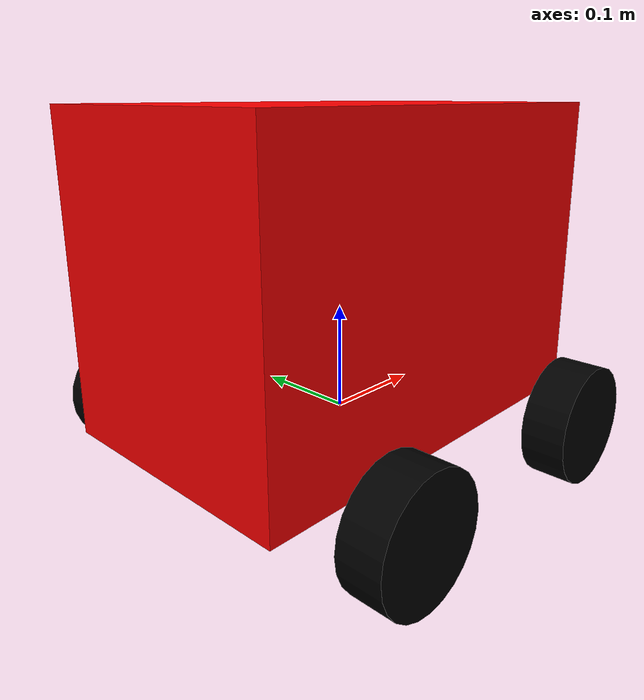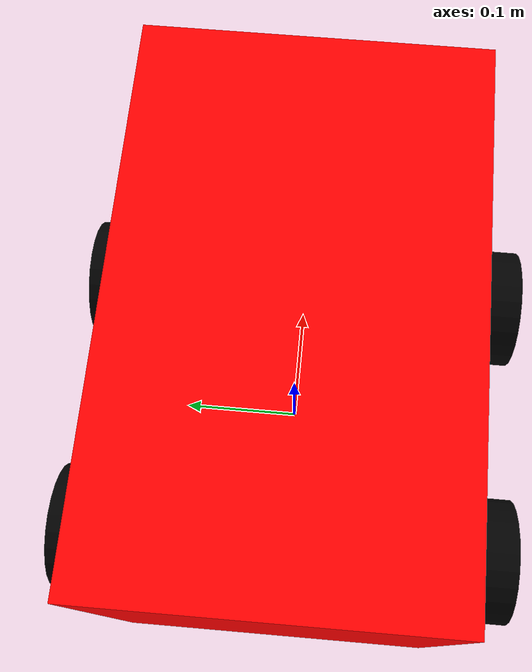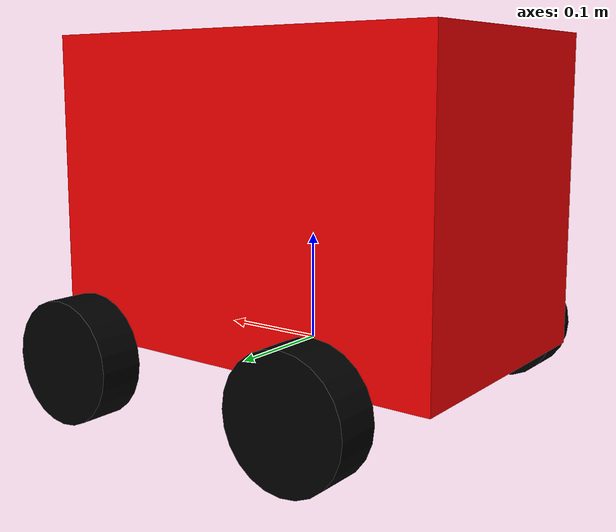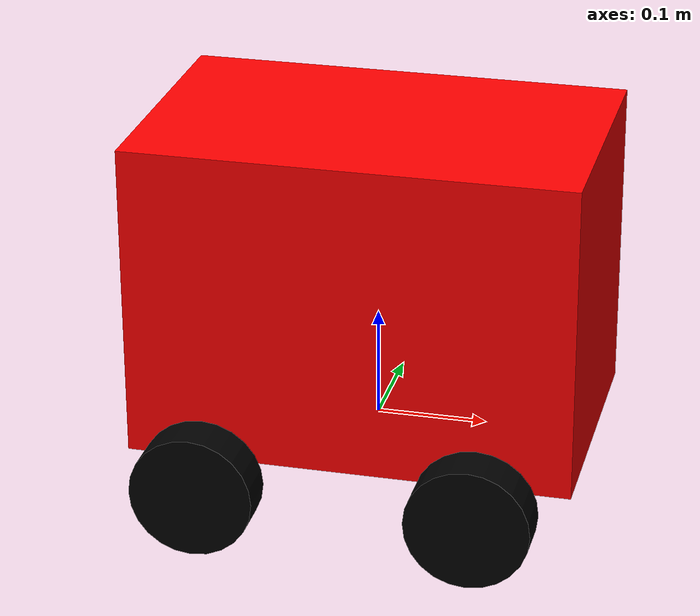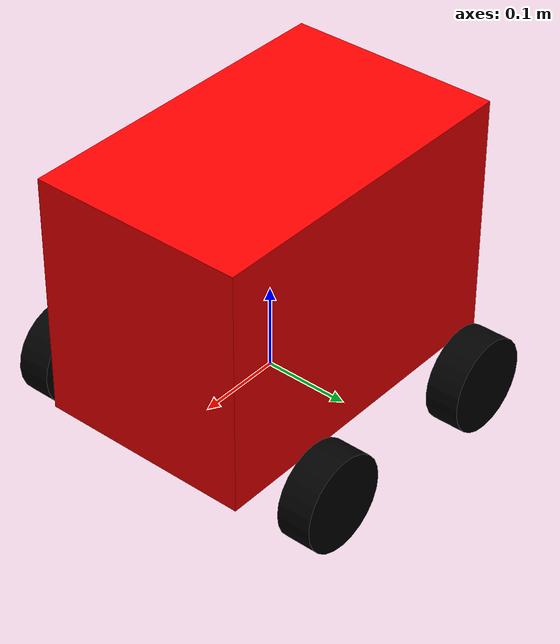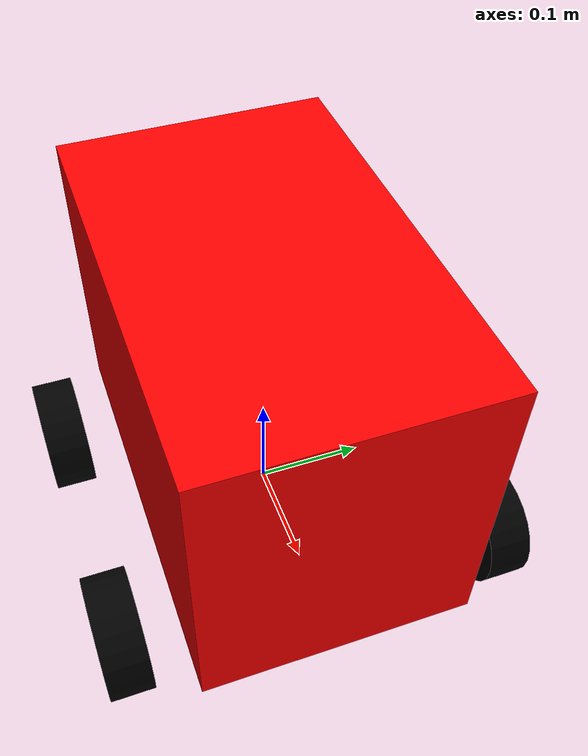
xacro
<?xml version="1.0"?>
<robot xmlns:xacro="https://www.ros.org/wiki/xacro">

    <xacro:include filename="inertial_macros.xacro"/>

    <!-- MATERIALS-->

    <material name="red">
        <color rgba="1 0.0 0.0 1.0"/>
    </material>

    <material name="black">
        <color rgba="0.0 0.0 0.0 1.0"/>
    </material>

    <material name="green">
        <color rgba="0.0 1 0.0 1.0"/>
    </material>

    <!-- LINKS-->

    <link name="base_link"></link>

    <link name="base_footprint"></link>

    <link name="chassis">
        <visual>
            <geometry>
                <box size="0.4 0.25 0.285"/>
            </geometry>
            <origin xyz="0.2 0.0 0.1425" rpy="0.0 0.0 0.0"/>
            <material name="red"/>
        </visual>
        <collision>
            <geometry>
                <box size="0.4 0.25 0.285"/>
            </geometry>
            <origin xyz="0.2 0.0 0.1425" rpy="0.0 0.0 0.0"/>
        </collision>
        <xacro:inertial_box mass="0.5" x="0.4" y="0.25" z="0.285">
            <origin xyz="0.2 0.0 0.1425" rpy="0.0 0.0 0.0"/>
        </xacro:inertial_box>
    </link>
    <gazebo reference="chassis">
        <material>
            Gazebo/Red
        </material>
    </gazebo>

    <link name="left_wheel">
        <visual>
            <geometry>
                <cylinder radius="0.055" length="0.04"/>
            </geometry>
            <material name="black"/>
        </visual>
        <collision>
            <geometry>
                <sphere radius="0.055"/>
            </geometry>
            <material name="black"/>
        </collision>
        <xacro:inertial_cylinder mass="0.1" length="0.04" radius="0.055">
            <origin xyz="0.0 0.0 0.0" rpy="0.0 0.0 0.0"/>
        </xacro:inertial_cylinder>
    </link>
    <gazebo reference="left_wheel">
        <material>
            Gazebo/Black
        </material>
    </gazebo>

    <link name="right_wheel">
        <visual>
            <geometry>
                <cylinder radius="0.055" length="0.04"/>
            </geometry>
            <material name="black"/>
        </visual>
        <collision>
            <geometry>
                <sphere radius="0.055"/>
            </geometry>
            <material name="black"/>
        </collision>
        <xacro:inertial_cylinder mass="0.1" length="0.04" radius="0.055">
            <origin xyz="0.0 0.0 0.0" rpy="0.0 0.0 0.0"/>
        </xacro:inertial_cylinder>
    </link>
    <gazebo reference="right_wheel">
        <material>
            Gazebo/Black
        </material>
    </gazebo>

    <link name="back_left_wheel">
        <visual>
            <geometry>
                <cylinder radius="0.055" length="0.04"/>
            </geometry>
            <material name="black"/>
        </visual>
        <collision>
            <geometry>
                <sphere radius="0.055"/>
            </geometry>
            <material name="black"/>
        </collision>
        <xacro:inertial_cylinder mass="0.1" length="0.04" radius="0.055">
            <origin xyz="0.0 0.0 0.0" rpy="0.0 0.0 0.0"/>
        </xacro:inertial_cylinder>
    </link>
    <gazebo reference="back_left_wheel">
        <material>
            Gazebo/Black
        </material>
    </gazebo>

    <link name="back_right_wheel">
        <visual>
            <geometry>
                <cylinder radius="0.055" length="0.04"/>
            </geometry>
            <material name="black"/>
        </visual>
        <collision>
            <geometry>
                <sphere radius="0.055"/>
            </geometry>
            <material name="black"/>
        </collision>
        <xacro:inertial_cylinder mass="0.1" length="0.04" radius="0.055">
            <origin xyz="0.0 0.0 0.0" rpy="0.0 0.0 0.0"/>
        </xacro:inertial_cylinder>
    </link>
    <gazebo reference="back_right_wheel">
        <material>
            Gazebo/Black
        </material>
    </gazebo>

    <!-- JOINTS-->

    <joint name="base_footprint_joint" type="fixed">
        <parent link="base_link"/>
        <child link="base_footprint"/>
        <origin xyz="0.0 0.0 0.0" rpy="0.0 0.0 0.0"/>
    </joint>

    <joint name="chassis_joint" type="fixed">
        <parent link="base_link"/>
        <child link="chassis"/>
        <origin xyz="-0.2 0.0 0.0" rpy="0.0 0.0 0.0"/>
    </joint>

    <joint name="left_wheel_joint" type="continuous">
        <parent link="chassis"/>
        <child link="left_wheel"/>
        <axis xyz="0.0 0.0 1"/>
        <origin xyz="0.323 0.18 0.0" rpy="-${pi/2} 0.0 0.0"/>
    </joint>

    <joint name="right_wheel_joint" type="continuous">
        <parent link="chassis"/>
        <child link="right_wheel"/>
        <axis xyz="0.0 0.0 1"/>
        <origin xyz="0.323 -0.18 0.0" rpy="-${pi/2} 0.0 0.0"/>
    </joint>

    <joint name="back_left_wheel_joint" type="continuous">
        <parent link="chassis"/>
        <child link="back_left_wheel"/>
        <axis xyz="0.0 0.0 1"/>
        <origin xyz="0.08 0.18 0.0" rpy="-${pi/2} 0.0 0.0"/>
    </joint>

    <joint name="back_right_wheel_joint" type="continuous">
        <parent link="chassis"/>
        <child link="back_right_wheel"/>
        <axis xyz="0.0 0.0 1"/>
        <origin xyz="0.08 -0.18 0.0" rpy="-${pi/2} 0.0 0.0"/>
    </joint>

</robot>
